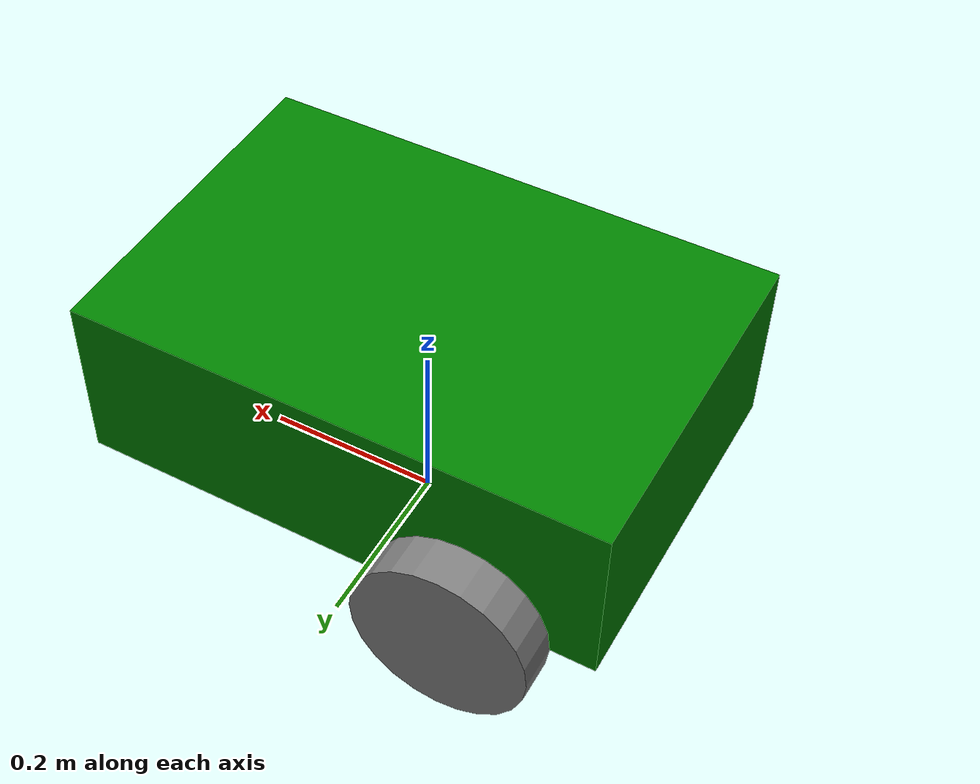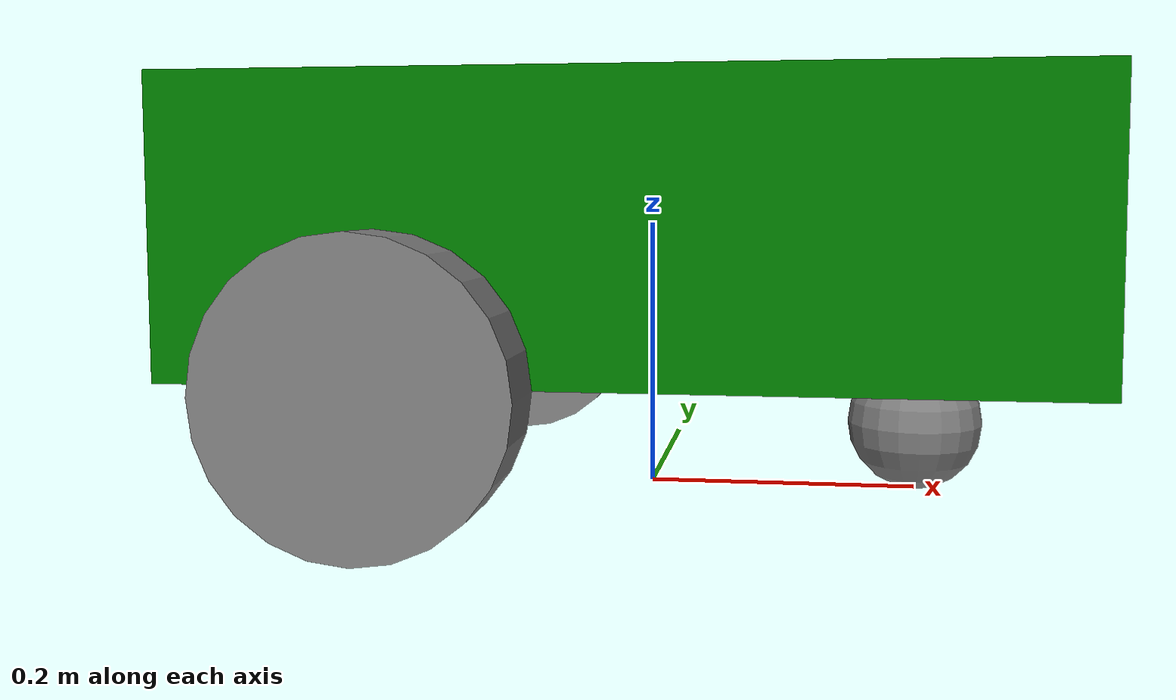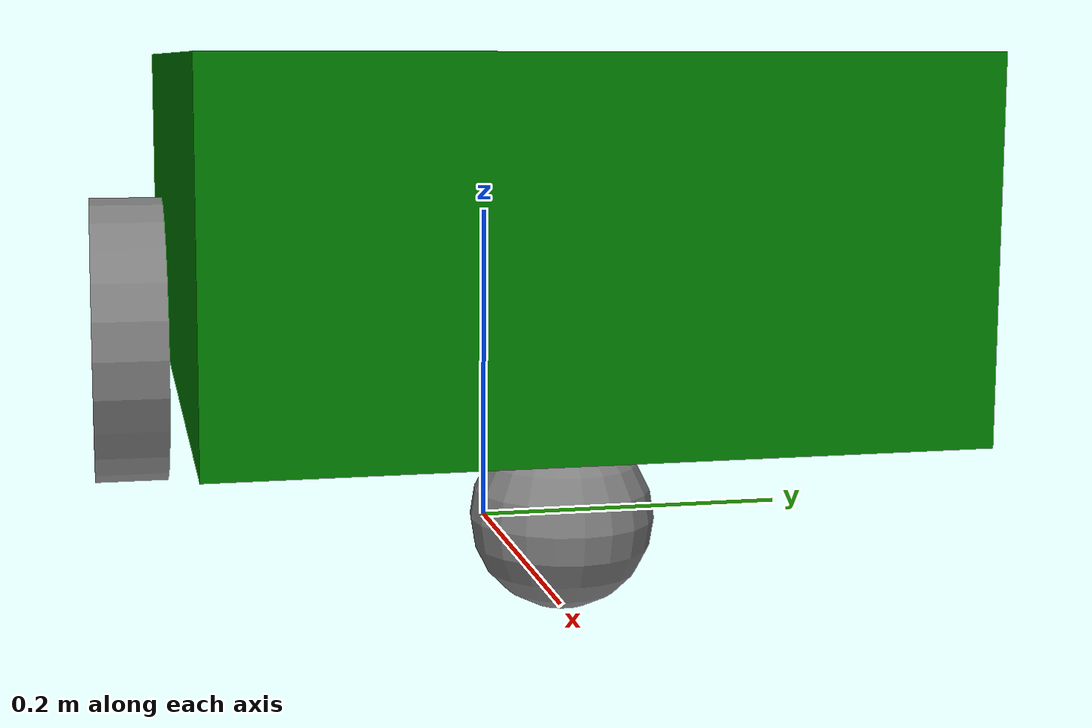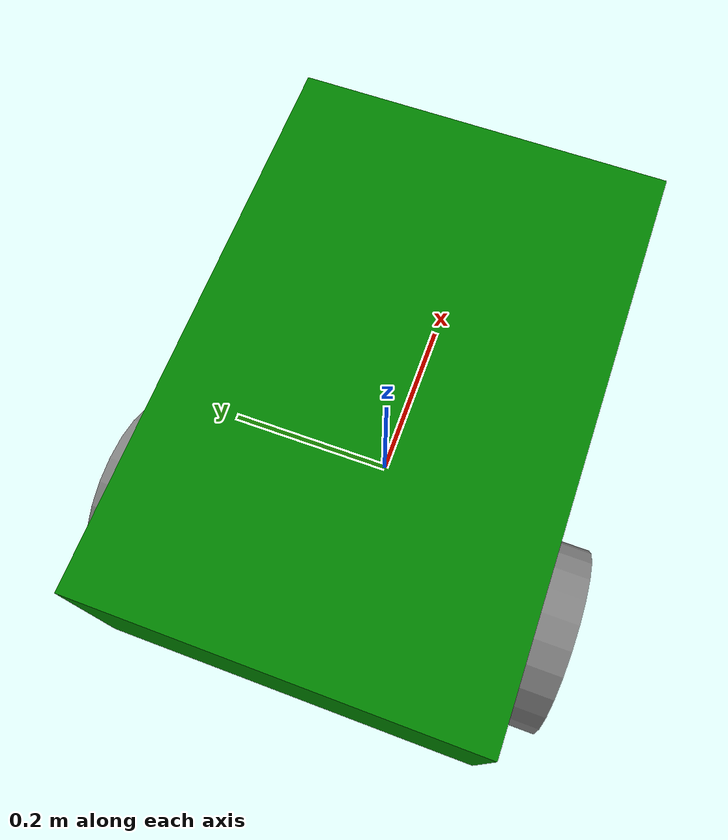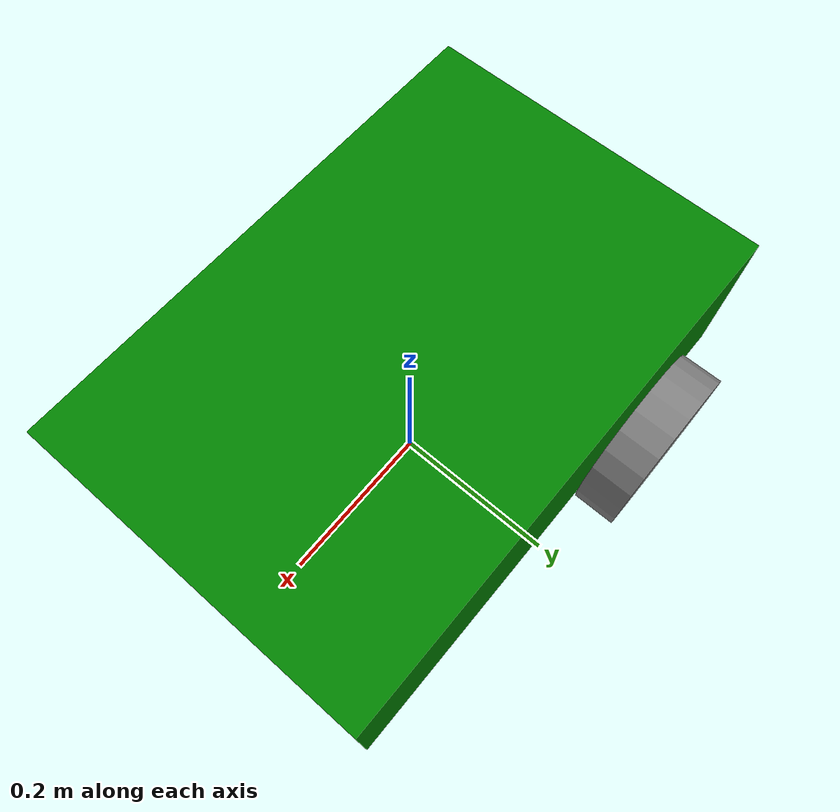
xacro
<?xml version="1.0"?>
<!-- the template of specifing the links as urdf file-->
<!-- xmlin:xacro term made the urdf xacro compatible-->
<robot name="my_robot" xmlns:xacro="http://www.ros.org/wiki/xacro">
<!-- this is the basic template, most of codes are implemented between robot brackets-->

    <!-- refer to other xacro file, to access their items-->
    <xacro:include filename="common_properties.xacro" />
    <!-- mobile_base calls the property in common_properties but didn't include that file in it-->
    <!-- so we need to include common_properties before mobile_base here-->
    <xacro:include filename="mobile_base.xacro" />
    <!-- the urdf material are appropriate for rviz but not for gazebo
        so we need to wrap the existing link material with gazebo version material-->
    <xacro:include filename="mobile_base_gazebo.xacro" />
</robot>

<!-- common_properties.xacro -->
<!-- not putting robot name here because it is going to be referred by other urdf files-->
<robot xmlns:xacro="http://www.ros.org/wiki/xacro">

    <material name="green">
        <!--red green blue alpha(transparency)-->
        <color rgba="0 0.5 0 1" />
    </material>
    <material name="grey">
        <color rgba="0.5 0.5 0.5 1" />
    </material>
    <!--define a function to define inertial matrices for differenet boxes-->
    <!-- mass length width height (origin's)xyz rpy (all in SI units)-->
    <xacro:macro name="box_inertia" params="m l w h xyz rpy">
        <inertial>
            <origin xyz="${xyz}" rpy="${rpy}" />
            <mass value="${m}" />
            <!-- implement the moment of inertia of cuboid-->
            <inertia ixx="${(m/12.0)*(h*h+l*l)}" ixy="0" ixz="0"
                     iyy="${(m/12.0)*(w*w+l*l)}" iyz="0"
                     izz="${(m/12.0)*(w*w+h*h)}" />
        </inertial>
    </xacro:macro>
    <!--the inertia matrix (describes all rotation direction) of cylinders-->
    <xacro:macro name="cylinder_inertia" params="m r h xyz rpy">
        <inertial>
            <origin xyz="${xyz}" rpy="${rpy}" />
            <mass value="${m}" />
            <!-- implement the moment of inertia of cuboid-->
            <inertia ixx="${(m/12.0)*(3*r*r+h*h)}" ixy="0" ixz="0"
                     iyy="${(m/12.0)*(3*r*r+h*h)}" iyz="0"
                     izz="${(m/2.0)*(r*r)}" />
        </inertial>
    </xacro:macro>
    <!--inertia matrix for sphere-->
    <xacro:macro name="sphere_inertia" params="m r xyz rpy">
        <inertial>
            <origin xyz="${xyz}" rpy="${rpy}" />
            <mass value="${m}" />
            <!-- implement the moment of inertia of cuboid-->
            <inertia ixx="${(m*0.4)*(r*r)}" ixy="0" ixz="0"
                     iyy="${(m*0.4)*(r*r)}" iyz="0"
                     izz="${(m*0.4)*(r*r)}" />
        </inertial>
    </xacro:macro>
</robot>

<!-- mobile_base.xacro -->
<!-- not putting robot name here because it is going to be referred by other urdf files-->
<!-- this file is the configuration of car's model, base& base_footprint& wheels-->
<robot xmlns:xacro="http://www.ros.org/wiki/xacro">
    <!-- declare constant by xacro:property-->
    <xacro:property name="base_length" value="0.6" />
    <xacro:property name="base_width" value="0.4" />
    <xacro:property name="base_height" value="0.2" />
    <xacro:property name="wheel_radius" value="0.1" />
    <xacro:property name="wheel_length" value="0.05" />

    <!-- declare function/reusable block by xacro:macro, with a parameter named "prefix"-->
    <xacro:macro name="wheel_link" params="prefix">
        <link name="${prefix}_wheel_link">
            <visual>
                <geometry>
                    <cylinder radius="${wheel_radius}" length="${wheel_length}" />
                </geometry>
                <!-- pi is a constant in xacro, otherwise use 3.14-->
                <origin xyz="0 0 0" rpy="${pi/2.0} 0 0" />
                <!-- it calls the material grey, so function should be declared after material-->
                <material name="grey" />
            </visual>
            <collision>
            <!-- collision is simply a shape, but over complicated collision will take longer time to compute-->
                <geometry>
                    <cylinder radius="${wheel_radius}" length="${wheel_length}" />
                </geometry>
                <origin xyz="0 0 0" rpy="${pi/2.0} 0 0" />
            </collision>
            <xacro:cylinder_inertia m="1.0" r="${wheel_radius}" h="${wheel_length}" xyz="0 0 0" rpy="${pi/2.0} 0 0" />
        </link>
    </xacro:macro>
    <!-- base_footprint is a virtual link used to fix the base_link from dependent motion caused by other link-->
    <link name="base_footprint"/>

    <link name="base_link">
        <!--create a robot link, which is a component of the robot-->
        <visual>
            <!--visualize the robot component-->
            <geometry>
                <!--defining the shape of this object-->
                <!--size=>"length width height(m)"-->
                <box size="${base_length} ${base_width} ${base_height}"/>
            </geometry>
            <!-- typical 6 dof x y z(m) roll pitch yaw(rad)-->
            <!-- box's origin is the center of box, so add an offset of box's center in CF (GCF in this case)-->
            <origin xyz="0 0 ${base_height/2.0}" rpy="0 0 0" />
            <!-- use the material declared before-->
            <material name="green" />
        </visual>
        <collision>
            <geometry>
                <box size="${base_length} ${base_width} ${base_height}"/>
            </geometry>
            <origin xyz="0 0 ${base_height/2.0}" rpy="0 0 0" />
        </collision>
        <!-- implement the inertia of box, using the function defined in common_properties-->
        <xacro:box_inertia m="5.0" l="${base_length}" w="${base_width}" h="${base_height}"
                           xyz="0 0 ${base_height/2.0}" rpy="0 0 0" />
    </link>

    <!-- these two lines will call the macro function created before to create wheel links-->
    <xacro:wheel_link prefix="right" />
    <xacro:wheel_link prefix="left" />

    <link name="caster_wheel_link">
        <visual>
            <geometry>
                <sphere radius="${wheel_radius/2.0}" />
            </geometry>
            <origin xyz="0 0 0" rpy="0 0 0" />
            <material name="grey" />
        </visual>
        <collision>
            <geometry>
                <sphere radius="${wheel_radius/2.0}" />
            </geometry>
            <origin xyz="0 0 0" rpy="0 0 0" />
        </collision>
        <xacro:sphere_inertia m="0.5" r="${wheel_radius/2.0}" xyz="0 0 0" rpy="0 0 0" />
    </link>

    <joint name="base_left_wheel_joint" type="continuous">
        <parent link="base_link" />
        <child link="left_wheel_link" />
        <!-- vector from parent origin/CF to child origin/CF-->
        <origin xyz="${-base_length/4.0} ${(base_width+wheel_length)/2.0} 0" rpy="0 0 0" />
        <!-- for revolute joint, rotation axis and velocity(rad/s) effort limit-->
        <axis xyz="0 1 0" />
        <limit effort="100" velocity="100" />
    </joint>

    <joint name="base_right_wheel_joint" type="continuous">
        <parent link="base_link" />
        <child link="right_wheel_link" />
        <origin xyz="${-base_length/4.0} ${-(base_width+wheel_length)/2.0} 0" rpy="0 0 0" />
        <axis xyz="0 1 0" />
        <limit effort="100" velocity="100" />
    </joint>

    <!-- we don't actually simulate the caster wheel's motion-->
    <joint name="base_caster_wheel_joint" type="fixed">
        <parent link="base_link" />
        <child link="caster_wheel_link" />
        <origin xyz="${base_length/3.0} 0 ${-wheel_radius/2.0}" rpy="0 0 0" />
    </joint>

    <joint name="base_joint" type="fixed">
        <parent link="base_footprint" />
        <child link="base_link" />
        <origin xyz="0 0 ${wheel_radius}" rpy="0 0 0" />
    </joint>

</robot>
